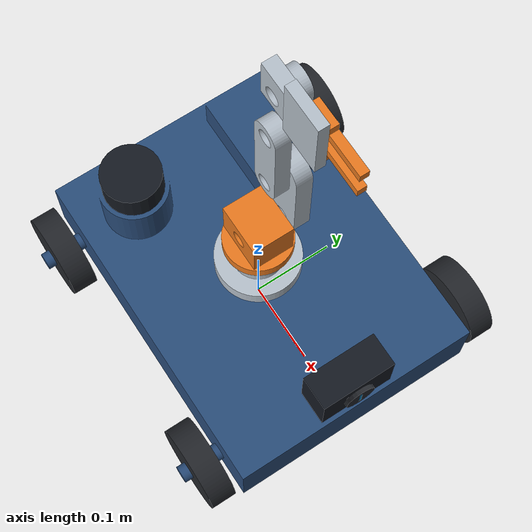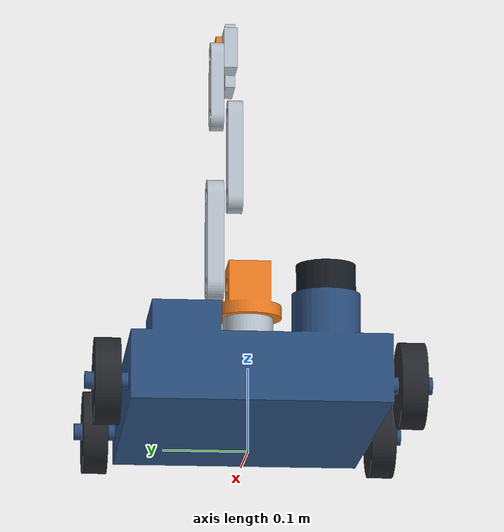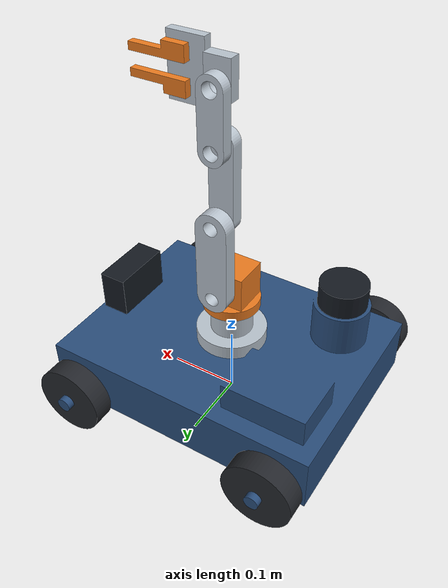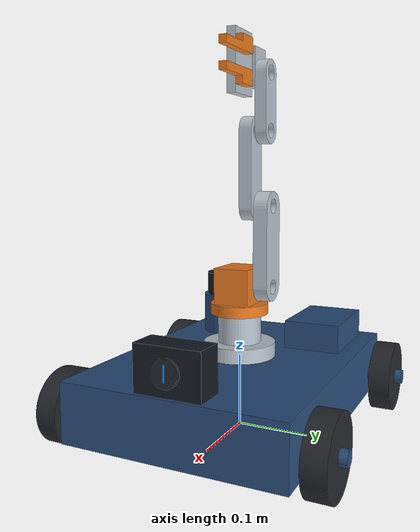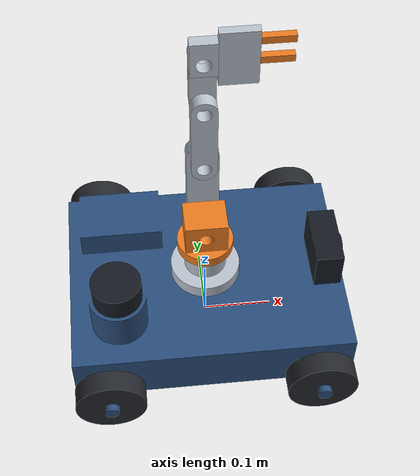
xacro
<?xml version="1.0"?>
<robot xmlns:xacro="http://www.ros.org/wiki/xacro" name="mobile_manipulator">
  <xacro:include filename="mesh_origins.xacro"/>
  <xacro:include filename="common.xacro"/>
  <xacro:include filename="chassis.xacro"/>
  <xacro:include filename="arm.xacro"/>
  <xacro:include filename="sensors.xacro"/>
  <xacro:chassis/>
  <xacro:arm/>
  <xacro:sensors/>
</robot>

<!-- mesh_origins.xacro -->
<robot xmlns:xacro="http://www.ros.org/wiki/xacro">
  <!-- Rigid corrections for assembly-coordinate STL files; units m/rad. -->
  <!-- Generated by tools/derive_alignment.py. All original meshes remain in mm. -->
  <xacro:property name="base_plate_mesh_xyz" value="-0.4520721115 0.2285904914 -0.1840926514"/>
  <xacro:property name="base_plate_mesh_rpy" value="1.5707963268 -0.0000000000 0.4280815390"/>
  <xacro:property name="wheel_mesh_xyz" value="-0.6020721037 0.0535904873 -0.1740926533"/>
  <xacro:property name="wheel_mesh_rpy" value="1.5707963268 -0.0000000000 0.4280815390"/>
  <xacro:property name="arm_base_mesh_xyz" value="-0.3440458188 0.3718269443 -0.2240926405"/>
  <xacro:property name="arm_base_mesh_rpy" value="1.5707963561 -0.0000000021 0.0720532934"/>
  <xacro:property name="joint1_platform_mesh_xyz" value="-0.3440458188 0.3718269461 -0.2840926405"/>
  <xacro:property name="joint1_platform_mesh_rpy" value="1.5707963561 -0.0000000021 0.0720532934"/>
  <xacro:property name="link1_mesh_xyz" value="-0.3938327908 0.3318269468 -0.2613413593"/>
  <xacro:property name="link1_mesh_rpy" value="1.5831295622 0.1692328603 0.0730993963"/>
  <xacro:property name="link2_mesh_xyz" value="-0.3452821170 0.3558269491 -0.4168680012"/>
  <xacro:property name="link2_mesh_rpy" value="1.5741564754 0.0465194005 0.0721314629"/>
  <xacro:property name="link3_mesh_xyz" value="0.2415607554 0.3338269502 -0.5727308911"/>
  <xacro:property name="link3_mesh_rpy" value="1.4722464708 -0.9378805985 0.1220120198"/>
  <xacro:property name="wrist_mount_mesh_xyz" value="0.2415607520 0.3498269607 -0.6477308879"/>
  <xacro:property name="wrist_mount_mesh_rpy" value="1.4722464708 -0.9378805985 0.1220120198"/>
  <xacro:property name="gripper_base_mesh_xyz" value="0.3518269607 -0.6552308879 0.1740607520"/>
  <xacro:property name="gripper_base_mesh_rpy" value="-1.5184249948 -0.6274728856 1.4817475682"/>
  <xacro:property name="gripper_jaw_1_mesh_xyz" value="-12.4908187015 9.7096317909 -5.1688432677"/>
  <xacro:property name="gripper_jaw_1_mesh_rpy" value="-1.5184249948 -0.6274728856 1.4817475682"/>
</robot>

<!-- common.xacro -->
<robot xmlns:xacro="http://www.ros.org/wiki/xacro">
  <material name="chassis_blue"><color rgba="0.16 0.30 0.48 1"/></material>
  <material name="arm_silver"><color rgba="0.72 0.76 0.80 1"/></material>
  <material name="joint_orange"><color rgba="0.92 0.48 0.12 1"/></material>
  <material name="rubber"><color rgba="0.14 0.15 0.17 1"/></material>
  <material name="sensor_dark"><color rgba="0.08 0.10 0.13 1"/></material>

  <!-- Masses are course-project estimates, not SolidWorks mass properties. -->
  <xacro:macro name="box_inertial" params="mass size xyz:='0 0 0'">
    <xacro:property name="d" value="${[float(v) for v in size.split()]}"/>
    <inertial>
      <origin xyz="${xyz}"/>
      <mass value="${mass}"/>
      <inertia ixx="${mass*(d[1]**2+d[2]**2)/12}" ixy="0" ixz="0"
               iyy="${mass*(d[0]**2+d[2]**2)/12}" iyz="0"
               izz="${mass*(d[0]**2+d[1]**2)/12}"/>
    </inertial>
  </xacro:macro>

  <!-- Cylinder inertia is about its local Z axis, rotated with origin rpy. -->
  <xacro:macro name="cylinder_inertial" params="mass radius length xyz:='0 0 0' rpy:='0 0 0'">
    <inertial>
      <origin xyz="${xyz}" rpy="${rpy}"/>
      <mass value="${mass}"/>
      <inertia ixx="${mass*(3*radius**2+length**2)/12}" ixy="0" ixz="0"
               iyy="${mass*(3*radius**2+length**2)/12}" iyz="0"
               izz="${mass*radius**2/2}"/>
    </inertial>
  </xacro:macro>

  <xacro:macro name="mesh_visual" params="file xyz rpy material">
    <visual>
      <origin xyz="${xyz}" rpy="${rpy}"/>
      <geometry>
        <mesh filename="package://mobile_manipulator_description/meshes/${file}.STL"
              scale="0.001 0.001 0.001"/>
      </geometry>
      <material name="${material}"/>
    </visual>
  </xacro:macro>

  <xacro:macro name="box_collision" params="size xyz:='0 0 0'">
    <collision><origin xyz="${xyz}"/><geometry><box size="${size}"/></geometry></collision>
  </xacro:macro>

  <xacro:macro name="cylinder_collision" params="radius length xyz:='0 0 0' rpy:='0 0 0'">
    <collision><origin xyz="${xyz}" rpy="${rpy}"/>
      <geometry><cylinder radius="${radius}" length="${length}"/></geometry>
    </collision>
  </xacro:macro>

  <xacro:macro name="fixed_joint" params="name parent child xyz rpy:='0 0 0'">
    <joint name="${name}" type="fixed">
      <parent link="${parent}"/><child link="${child}"/>
      <origin xyz="${xyz}" rpy="${rpy}"/>
    </joint>
  </xacro:macro>
</robot>

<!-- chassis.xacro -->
<robot xmlns:xacro="http://www.ros.org/wiki/xacro">
  <xacro:macro name="wheel" params="name x y mimic_joint:=''">
    <link name="${name}">
      <xacro:mesh_visual file="wheel" xyz="${wheel_mesh_xyz}" rpy="${wheel_mesh_rpy}" material="rubber"/>
      <xacro:cylinder_collision radius="0.05" length="0.03" rpy="${pi/2} 0 0"/>
      <xacro:cylinder_inertial mass="0.25" radius="0.05" length="0.03" rpy="${pi/2} 0 0"/>
    </link>
    <joint name="${name}_joint" type="continuous">
      <parent link="base_link"/><child link="${name}"/>
      <origin xyz="${x} ${y} -0.01"/>
      <axis xyz="0 1 0"/>
      <limit effort="3" velocity="10"/>
      <xacro:if value="${mimic_joint != ''}">
        <mimic joint="${mimic_joint}" multiplier="1" offset="0"/>
      </xacro:if>
    </joint>
  </xacro:macro>

  <xacro:macro name="chassis" params="">
    <!-- Empty root avoids the KDL root-inertia limitation. No odom/map in this phase. -->
    <link name="base_footprint"/>
    <xacro:fixed_joint name="base_footprint_joint" parent="base_footprint" child="base_link" xyz="0 0 0.061"/>
    <link name="base_link">
      <xacro:mesh_visual file="base_plate" xyz="${base_plate_mesh_xyz}" rpy="${base_plate_mesh_rpy}" material="chassis_blue"/>
      <xacro:box_collision size="0.4 0.3 0.08"/>
      <!-- Rear battery housing and lidar support already belong to base_plate.STL. -->
      <xacro:box_collision size="0.12 0.08 0.04" xyz="-0.12 0.085 0.06"/>
      <xacro:cylinder_collision radius="0.04" length="0.06" xyz="-0.13 -0.08 0.07"/>
      <xacro:cylinder_collision radius="0.01" length="0.05" xyz="0.15 0.175 -0.01" rpy="${pi/2} 0 0"/>
      <xacro:cylinder_collision radius="0.01" length="0.05" xyz="-0.15 0.175 -0.01" rpy="${pi/2} 0 0"/>
      <xacro:cylinder_collision radius="0.01" length="0.05" xyz="0.15 -0.175 -0.01" rpy="${pi/2} 0 0"/>
      <xacro:cylinder_collision radius="0.01" length="0.05" xyz="-0.15 -0.175 -0.01" rpy="${pi/2} 0 0"/>
      <xacro:box_inertial mass="5.0" size="0.4 0.3 0.08"/>
    </link>
    <!-- Rear wheels follow the front wheel of the same side in this GUI preview. -->
    <xacro:wheel name="front_left_wheel" x="0.15" y="0.175"/>
    <xacro:wheel name="rear_left_wheel" x="-0.15" y="0.175" mimic_joint="front_left_wheel_joint"/>
    <xacro:wheel name="front_right_wheel" x="0.15" y="-0.175"/>
    <xacro:wheel name="rear_right_wheel" x="-0.15" y="-0.175" mimic_joint="front_right_wheel_joint"/>
  </xacro:macro>
</robot>

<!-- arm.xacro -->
<robot xmlns:xacro="http://www.ros.org/wiki/xacro">
  <xacro:macro name="arm_segment" params="name file xyz rpy size com mass">
    <link name="${name}">
      <xacro:mesh_visual file="${file}" xyz="${xyz}" rpy="${rpy}" material="arm_silver"/>
      <xacro:box_collision size="${size}" xyz="${com}"/>
      <xacro:box_inertial mass="${mass}" size="${size}" xyz="${com}"/>
    </link>
  </xacro:macro>

  <xacro:macro name="pitch_joint" params="name parent child xyz lower upper effort">
    <joint name="${name}" type="revolute">
      <parent link="${parent}"/><child link="${child}"/>
      <origin xyz="${xyz}"/>
      <axis xyz="0 1 0"/>
      <limit lower="${lower}" upper="${upper}" effort="${effort}" velocity="1.0"/>
    </joint>
  </xacro:macro>

  <xacro:macro name="arm" params="">
    <link name="arm_base_link">
      <xacro:mesh_visual file="arm_base" xyz="${arm_base_mesh_xyz}" rpy="${arm_base_mesh_rpy}" material="arm_silver"/>
      <xacro:cylinder_collision radius="0.05" length="0.02" xyz="0 0 0.01"/>
      <xacro:cylinder_collision radius="0.03" length="0.04" xyz="0 0 0.04"/>
      <xacro:cylinder_inertial mass="0.5" radius="0.05" length="0.06" xyz="0 0 0.03"/>
    </link>
    <xacro:fixed_joint name="arm_base_joint" parent="base_link" child="arm_base_link" xyz="0 0 0.04"/>
    <link name="joint1_platform">
      <xacro:mesh_visual file="joint1_platform" xyz="${joint1_platform_mesh_xyz}" rpy="${joint1_platform_mesh_rpy}" material="joint_orange"/>
      <xacro:box_collision size="0.08 0.08 0.065" xyz="0 0 0.0325"/>
      <xacro:box_inertial mass="0.35" size="0.08 0.08 0.065" xyz="0 0 0.0325"/>
    </link>
    <joint name="J1" type="revolute">
      <parent link="arm_base_link"/><child link="joint1_platform"/>
      <origin xyz="0 0 0.06"/>
      <axis xyz="0 0 1"/>
      <limit lower="${-pi}" upper="${pi}" effort="10" velocity="1.0"/>
    </joint>

    <!-- Zero pose: links upright. Pitch +Y tilts each link from +Z toward +X. -->
    <!-- Measured hole spacing is 110/100/75 mm, NOT overall STL length. -->
    <xacro:arm_segment name="link1" file="link1" xyz="${link1_mesh_xyz}" rpy="${link1_mesh_rpy}"
                       size="0.045 0.020 0.150" com="0 0 0.055" mass="0.30"/>
    <xacro:pitch_joint name="J2" parent="joint1_platform" child="link1" xyz="0 0.040 0.040"
                       lower="${-pi/2}" upper="${pi/2}" effort="10"/>
    <xacro:arm_segment name="link2" file="link2" xyz="${link2_mesh_xyz}" rpy="${link2_mesh_rpy}"
                       size="0.035 0.018 0.140" com="0 0 0.050" mass="0.25"/>
    <xacro:pitch_joint name="J3" parent="link1" child="link2" xyz="0 -0.024 0.110"
                       lower="${-5*pi/6}" upper="${5*pi/6}" effort="7"/>
    <xacro:arm_segment name="link3" file="link3" xyz="${link3_mesh_xyz}" rpy="${link3_mesh_rpy}"
                       size="0.035 0.016 0.110" com="0 0 0.0375" mass="0.18"/>
    <xacro:pitch_joint name="J4" parent="link2" child="link3" xyz="0 0.022 0.100"
                       lower="${-5*pi/6}" upper="${5*pi/6}" effort="4"/>

    <xacro:arm_segment name="wrist_mount" file="wrist_mount" xyz="${wrist_mount_mesh_xyz}" rpy="${wrist_mount_mesh_rpy}"
                       size="0.035 0.016 0.050" com="0 0 0.0075" mass="0.10"/>
    <xacro:fixed_joint name="wrist_mount_joint" parent="link3" child="wrist_mount" xyz="0 -0.016 0.075"/>
    <xacro:arm_segment name="gripper_base" file="gripper_base" xyz="${gripper_base_mesh_xyz}" rpy="${gripper_base_mesh_rpy}"
                       size="0.012 0.080 0.050" com="0 0 -0.025" mass="0.12"/>
    <xacro:fixed_joint name="gripper_base_joint" parent="wrist_mount" child="gripper_base"
                       xyz="0.0675 -0.002 0.0075" rpy="${pi/2} 0 ${pi/2}"/>
    <!-- L profiles swapped per user: narrow fingers face the central opening. -->
    <xacro:jaw name="left_jaw" side="1" yaw="${pi}"/>
    <xacro:jaw name="right_jaw" side="-1" yaw="0"/>
  </xacro:macro>

  <xacro:macro name="jaw" params="name side yaw">
    <link name="${name}">
      <xacro:mesh_visual file="gripper_jaw-1" xyz="${gripper_jaw_1_mesh_xyz}" rpy="${gripper_jaw_1_mesh_rpy}" material="joint_orange"/>
      <xacro:box_collision size="0.010 0.020 0.030" xyz="0 0 -0.015"/>
      <xacro:box_collision size="0.010 0.010 0.045" xyz="0 0.005 0.0225"/>
      <xacro:box_inertial mass="0.04" size="0.010 0.020 0.075" xyz="0 0 0.0075"/>
    </link>
    <joint name="${name}_joint" type="prismatic">
      <parent link="gripper_base"/><child link="${name}"/>
      <!-- Root blocks sit on the gripper plate outer face; fingers extend along tool +Z. -->
      <!-- Each finger projects 10 mm inward from its root center; +/-20 mm gives a 20 mm gap. -->
      <origin xyz="0.011 ${side*0.020} 0" rpy="0 0 ${yaw}"/>
      <axis xyz="0 -1 0"/>
      <limit lower="0" upper="0.015" effort="15" velocity="0.02"/>
      <xacro:if value="${side == -1}">
        <!-- Left local -Y maps to parent +Y; right local -Y maps to parent -Y. -->
        <mimic joint="left_jaw_joint" multiplier="1" offset="0"/>
      </xacro:if>
    </joint>
  </xacro:macro>
</robot>

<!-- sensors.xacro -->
<robot xmlns:xacro="http://www.ros.org/wiki/xacro">
  <xacro:macro name="sensors" params="">
    <link name="lidar_link">
      <visual><geometry><cylinder radius="0.035" length="0.035"/></geometry><material name="sensor_dark"/></visual>
      <xacro:cylinder_collision radius="0.035" length="0.035"/>
      <xacro:cylinder_inertial mass="0.15" radius="0.035" length="0.035"/>
    </link>
    <xacro:fixed_joint name="lidar_joint" parent="base_link" child="lidar_link" xyz="-0.13 -0.08 0.1175"/>
    <link name="camera_link">
      <visual><geometry><box size="0.04 0.09 0.06"/></geometry><material name="sensor_dark"/></visual>
      <visual>
        <origin xyz="0.0225 0 0" rpy="0 ${pi/2} 0"/>
        <geometry><cylinder radius="0.018" length="0.005"/></geometry>
        <material name="rubber"/>
      </visual>
      <visual>
        <origin xyz="0.025 0 0"/>
        <geometry><box size="0.0002 0.003 0.022"/></geometry>
        <material name="camera_lens_blue"><color rgba="0.05 0.55 0.8 1"/></material>
      </visual>
      <xacro:box_collision size="0.04 0.09 0.06"/>
      <xacro:box_inertial mass="0.08" size="0.04 0.09 0.06"/>
    </link>
    <xacro:fixed_joint name="camera_joint" parent="base_link" child="camera_link" xyz="0.175 0 0.07"/>
    <!-- Optical convention: Z forward, X right, Y down. Geometry only, no sensor plugins. -->
    <link name="camera_optical_frame"/>
    <xacro:fixed_joint name="camera_optical_joint" parent="camera_link" child="camera_optical_frame"
                       xyz="0.025 0 0" rpy="${-pi/2} 0 ${-pi/2}"/>
  </xacro:macro>
</robot>
